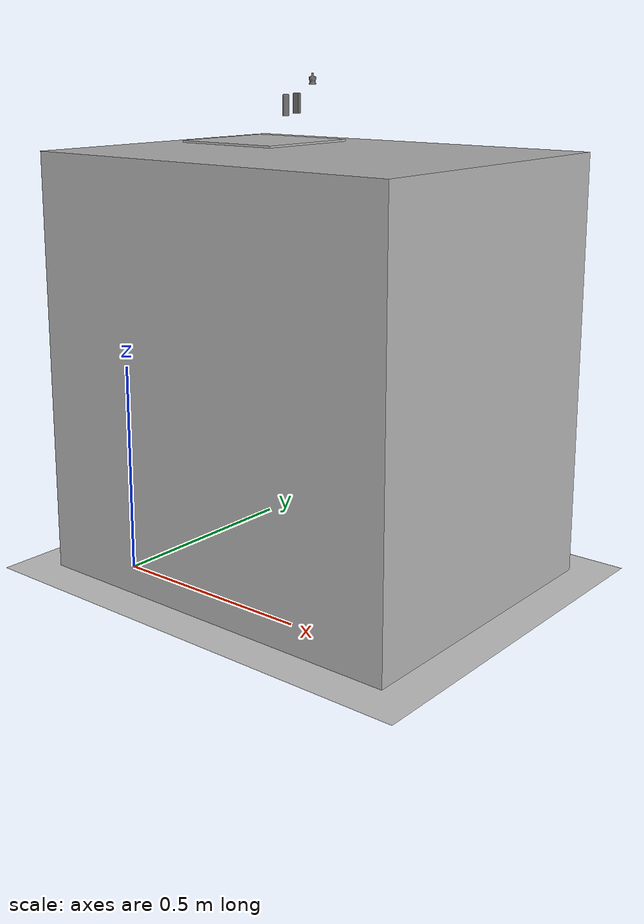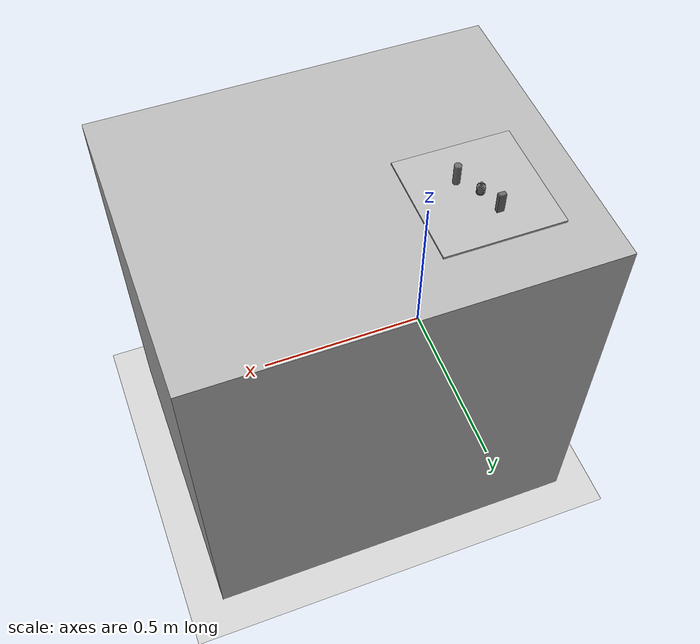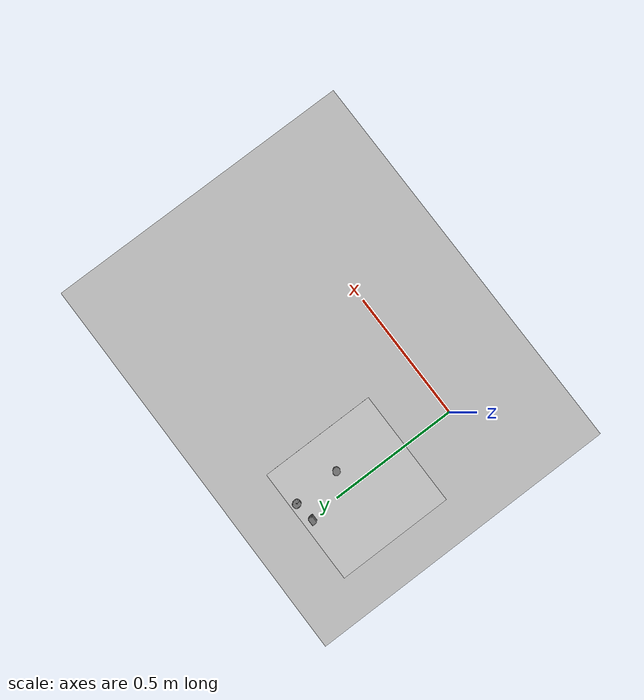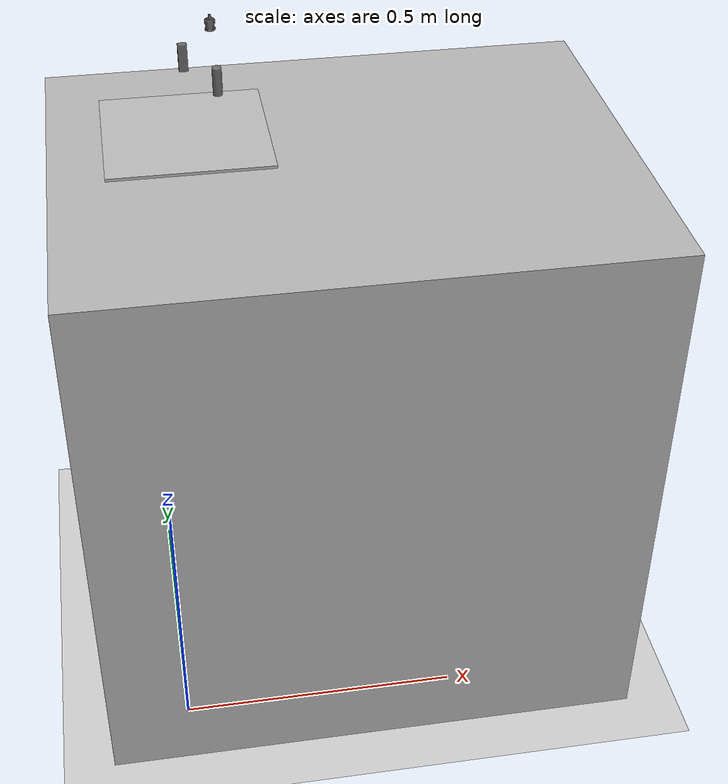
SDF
<sdf version="1.6">
 <world name="empty">
  <physics name="1ms" type="ignored">
   <max_step_size>0.01</max_step_size>
   <real_time_factor>1.0</real_time_factor>
  </physics>
  <plugin filename="ignition-gazebo-physics-system" name="gz::sim::systems::Physics"/>
  <plugin filename="ignition-gazebo-user-commands-system" name="gz::sim::systems::UserCommands"/>
  <plugin filename="ignition-gazebo-scene-broadcaster-system" name="gz::sim::systems::SceneBroadcaster"/>
  <plugin filename="ignition-gazebo-contact-system" name="gz::sim::systems::Contact"/>
  <light type="point" name="sun">
   <cast_shadows>false</cast_shadows>
   <pose>0 0 10 0 0 0</pose>
   <diffuse>0.8 0.8 0.8 1</diffuse>
   <specular>0.2 0.2 0.2 1</specular>
   <attenuation>
    <range>1000</range>
    <constant>0.9</constant>
    <linear>0.01</linear>
    <quadratic>0.001</quadratic>
   </attenuation>
   <direction>-0.5 0.1 -0.9</direction>
  </light>
  <model name="ground_plane">
   <static>true</static>
   <link name="link">
    <collision name="collision">
     <geometry><plane><normal>0 0 1</normal><size>100 100</size></plane></geometry>
    </collision>
    <visual name="visual">
     <geometry><plane><normal>0 0 1</normal><size>100 100</size></plane></geometry>
     <material>
      <ambient>0.8 0.8 0.8 1</ambient>
      <diffuse>0.8 0.8 0.8 1</diffuse>
      <specular>0.8 0.8 0.8 1</specular>
     </material>
    </visual>
   </link>
  </model>
  <model name="box">
   <pose>0.342 0.272 0.5 0 -0 0</pose>
   <link name="box_link">
    <inertial>
     <inertia><ixx>0.16666</ixx><ixy>0</ixy><ixz>0</ixz><iyy>0.16666</iyy><iyz>0</iyz><izz>0.16666</izz></inertia>
     <mass>1</mass>
    </inertial>
    <collision name="box_collision"><geometry><box><size>0.97 0.76 1</size></box></geometry></collision>
    <visual name="box_visual">
     <geometry><box><size>0.97 0.76 1</size></box></geometry>
     <material>
      <ambient>0.3 0.3 0.3 1</ambient>
      <diffuse>0.7 0.7 0.7 1</diffuse>
      <specular>1 1 1 1</specular>
     </material>
    </visual>
   </link>
   <static>false</static>
  </model>
  <model name="Unterlage Bauteile">
   <link name="link">
    <visual name="visual">
     <geometry><mesh><uri>Unterlage Bauteile_blender.dae</uri><scale>0.7 0.7 0.1</scale></mesh></geometry>
    </visual>
    <collision name="collision">
     <geometry><mesh><uri>Unterlage Bauteile_blender.dae</uri><scale>0.7 0.7 0.1</scale></mesh></geometry>
    </collision>
    <inertial>
     <mass>1</mass>
     <inertia><ixx>1</ixx><ixy>0</ixy><ixz>0</ixz><iyy>1</iyy><iyz>0</iyz><izz>1</izz></inertia>
    </inertial>
   </link>
   <pose>-0.05 0.25 1.008 0 -0 0</pose>
   <static>true</static>
  </model>
  <model name="BNC_Male">
   <link name="link">
    <visual name="visual">
     <geometry><mesh><uri>BNC_Male.dae</uri><scale>0.254 0.254 0.254</scale></mesh></geometry>
    </visual>
    <collision name="collision">
     <geometry><mesh><uri>BNC_Male_collision.stl</uri><scale>0.254 0.254 0.254</scale></mesh></geometry>
    </collision>
    <inertial>
     <mass>1</mass>
     <inertia><ixx>1</ixx><ixy>0</ixy><ixz>0</ixz><iyy>1</iyy><iyz>0</iyz><izz>1</izz></inertia>
    </inertial>
   </link>
   <pose>0.15 0.5 1.15 0 -0 0</pose>
   <static>false</static>
  </model>
  <model name="Ket16_Square">
   <link name="link">
    <visual name="visual">
     <geometry><mesh><uri>KET16_Square.dae</uri><scale>1 1 1</scale></mesh></geometry>
    </visual>
    <collision name="collision">
     <geometry><mesh><uri>KET16_Square.dae</uri><scale>1 1 1</scale></mesh></geometry>
    </collision>
    <inertial>
     <mass>1</mass>
     <inertia><ixx>1</ixx><ixy>0</ixy><ixz>0</ixz><iyy>1</iyy><iyz>0</iyz><izz>1</izz></inertia>
    </inertial>
   </link>
   <pose>0.1 0.5 1.1 0 -0 0</pose>
   <static>false</static>
  </model>
  <model name="Zylinder16">
   <link name="link">
    <visual name="visual"><geometry><mesh><uri>RGOCG16.dae</uri><scale>1 1 1</scale></mesh></geometry></visual>
    <collision name="collision">
     <geometry><mesh><uri>RGOCG16.dae</uri><scale>1 1 1</scale></mesh></geometry>
    </collision>
    <inertial>
     <mass>1</mass>
     <inertia><ixx>1</ixx><ixy>0</ixy><ixz>0</ixz><iyy>1</iyy><iyz>0</iyz><izz>1</izz></inertia>
    </inertial>
   </link>
   <pose>0.15 0.4 1.1 0 -0 0</pose>
   <static>false</static>
  </model>
 </world>
</sdf>
